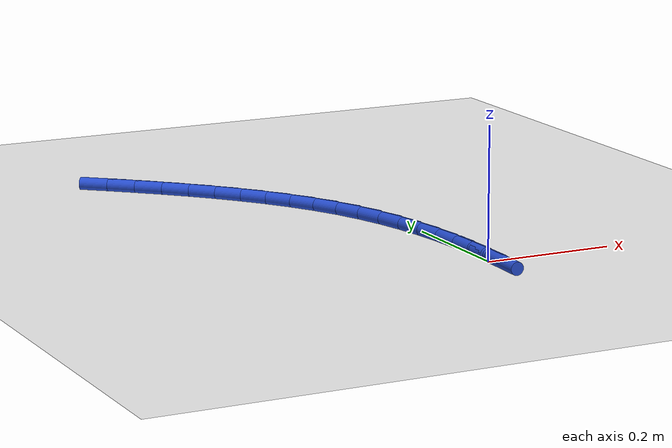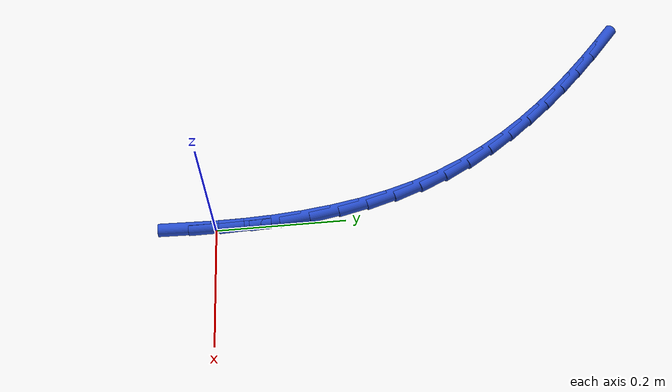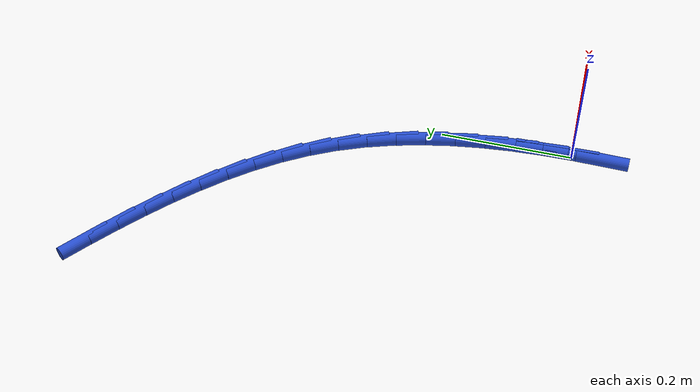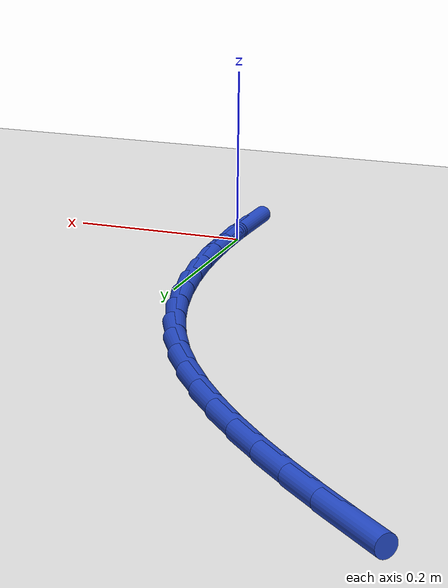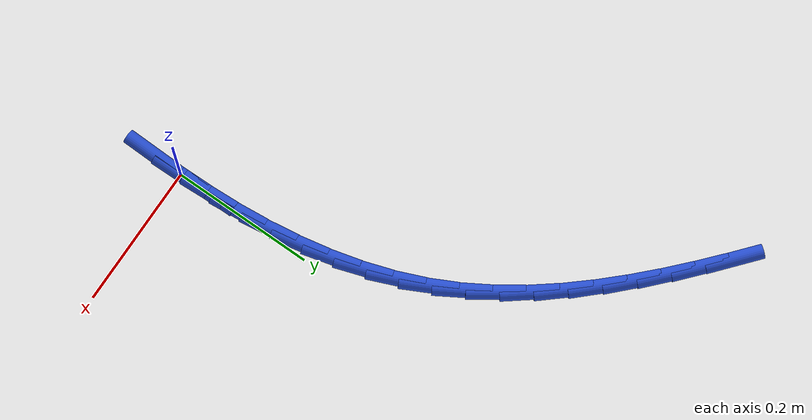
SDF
<sdf version="1.6">
 <world name="default">
  <model name="ground_plane">
   <static>1</static>
   <link name="link">
    <collision name="collision">
     <geometry><plane><normal>0 0 1</normal><size>100 100</size></plane></geometry>
     <surface><friction><ode><mu>100</mu><mu2>50</mu2></ode></friction></surface>
    </collision>
    <visual name="visual">
     <cast_shadows>0</cast_shadows>
     <geometry><plane><normal>0 0 1</normal><size>100 100</size></plane></geometry>
     <material>
      <script><uri>file://media/materials/scripts/gazebo.material</uri><name>Gazebo/WhiteGlow</name></script>
     </material>
    </visual>
   </link>
  </model>
  <model name="line">
   <link name="link_0">
    <pose>-2.2551405187698492e-17 1.5265566588595902e-16 0.01 0 1.57 -1.5581110182866578</pose>
    <collision name="collision">
     <geometry><cylinder><radius>0.01</radius><length>0.08</length></cylinder></geometry>
    </collision>
    <visual name="visual">
     <material>
      <script><name>Gazebo/Blue</name><uri>file://media/materials/scripts/gazebo.material</uri></script>
     </material>
     <geometry><cylinder><radius>0.01</radius><length>0.08</length></cylinder></geometry>
    </visual>
   </link>
   <link name="link_1">
    <pose>-0.0005864934314034655 0.04623158922415922 0.01 0 1.57 -1.5196813050333393</pose>
    <collision name="collision">
     <geometry><cylinder><radius>0.01</radius><length>0.08</length></cylinder></geometry>
    </collision>
    <visual name="visual">
     <material>
      <script><name>Gazebo/Blue</name><uri>file://media/materials/scripts/gazebo.material</uri></script>
     </material>
     <geometry><cylinder><radius>0.01</radius><length>0.08</length></cylinder></geometry>
    </visual>
   </link>
   <link name="link_2">
    <pose>-0.002946953853219973 0.09237075187400023 0.01 0 1.57 -1.4768216190914107</pose>
    <collision name="collision">
     <geometry><cylinder><radius>0.01</radius><length>0.08</length></cylinder></geometry>
    </collision>
    <visual name="visual">
     <material>
      <script><name>Gazebo/Blue</name><uri>file://media/materials/scripts/gazebo.material</uri></script>
     </material>
     <geometry><cylinder><radius>0.01</radius><length>0.08</length></cylinder></geometry>
    </visual>
   </link>
   <link name="link_3">
    <pose>-0.007266713185651544 0.13820261088529684 0.01 0 1.57 -1.4290814146857238</pose>
    <collision name="collision">
     <geometry><cylinder><radius>0.01</radius><length>0.08</length></cylinder></geometry>
    </collision>
    <visual name="visual">
     <material>
      <script><name>Gazebo/Blue</name><uri>file://media/materials/scripts/gazebo.material</uri></script>
     </material>
     <geometry><cylinder><radius>0.01</radius><length>0.08</length></cylinder></geometry>
    </visual>
   </link>
   <link name="link_4">
    <pose>-0.01373110334890018 0.18351228919382262 0.01 0 1.57 -1.3759944871478906</pose>
    <collision name="collision">
     <geometry><cylinder><radius>0.01</radius><length>0.08</length></cylinder></geometry>
    </collision>
    <visual name="visual">
     <material>
      <script><name>Gazebo/Blue</name><uri>file://media/materials/scripts/gazebo.material</uri></script>
     </material>
     <geometry><cylinder><radius>0.01</radius><length>0.08</length></cylinder></geometry>
    </visual>
   </link>
   <link name="link_5">
    <pose>-0.02252545626316788 0.2280849097353512 0.01 0 1.57 -1.3171097519300026</pose>
    <collision name="collision">
     <geometry><cylinder><radius>0.01</radius><length>0.08</length></cylinder></geometry>
    </collision>
    <visual name="visual">
     <material>
      <script><name>Gazebo/Blue</name><uri>file://media/materials/scripts/gazebo.material</uri></script>
     </material>
     <geometry><cylinder><radius>0.01</radius><length>0.08</length></cylinder></geometry>
    </visual>
   </link>
   <link name="link_6">
    <pose>-0.03383510384865665 0.27170559544565603 0.01 0 1.57 -1.2520382343686818</pose>
    <collision name="collision">
     <geometry><cylinder><radius>0.01</radius><length>0.08</length></cylinder></geometry>
    </collision>
    <visual name="visual">
     <material>
      <script><name>Gazebo/Blue</name><uri>file://media/materials/scripts/gazebo.material</uri></script>
     </material>
     <geometry><cylinder><radius>0.01</radius><length>0.08</length></cylinder></geometry>
    </visual>
   </link>
   <link name="link_7">
    <pose>-0.047845378025568486 0.3141594692605107 0.01 0 1.57 -1.1805191520707605</pose>
    <collision name="collision">
     <geometry><cylinder><radius>0.01</radius><length>0.08</length></cylinder></geometry>
    </collision>
    <visual name="visual">
     <material>
      <script><name>Gazebo/Blue</name><uri>file://media/materials/scripts/gazebo.material</uri></script>
     </material>
     <geometry><cylinder><radius>0.01</radius><length>0.08</length></cylinder></geometry>
    </visual>
   </link>
   <link name="link_8">
    <pose>-0.06474161071410542 0.355231654115689 0.01 0 1.57 -1.103817215434472</pose>
    <collision name="collision">
     <geometry><cylinder><radius>0.01</radius><length>0.08</length></cylinder></geometry>
    </collision>
    <visual name="visual">
     <material>
      <script><name>Gazebo/Blue</name><uri>file://media/materials/scripts/gazebo.material</uri></script>
     </material>
     <geometry><cylinder><radius>0.01</radius><length>0.08</length></cylinder></geometry>
    </visual>
   </link>
   <link name="link_9">
    <pose>-0.08466116027922482 0.3947411381217055 0.01 0 1.57 -1.0305617225246773</pose>
    <collision name="collision">
     <geometry><cylinder><radius>0.01</radius><length>0.08</length></cylinder></geometry>
    </collision>
    <visual name="visual">
     <material>
      <script><name>Gazebo/Blue</name><uri>file://media/materials/scripts/gazebo.material</uri></script>
     </material>
     <geometry><cylinder><radius>0.01</radius><length>0.08</length></cylinder></geometry>
    </visual>
   </link>
   <link name="link_10">
    <pose>-0.10743910433282212 0.4327202934184871 0.01 0 1.57 -0.9645054290978226</pose>
    <collision name="collision">
     <geometry><cylinder><radius>0.01</radius><length>0.08</length></cylinder></geometry>
    </collision>
    <visual name="visual">
     <material>
      <script><name>Gazebo/Blue</name><uri>file://media/materials/scripts/gazebo.material</uri></script>
     </material>
     <geometry><cylinder><radius>0.01</radius><length>0.08</length></cylinder></geometry>
    </visual>
   </link>
   <link name="link_11">
    <pose>-0.1327930913785158 0.4692843869252037 0.01 0 1.57 -0.9058867984979098</pose>
    <collision name="collision">
     <geometry><cylinder><radius>0.01</radius><length>0.08</length></cylinder></geometry>
    </collision>
    <visual name="visual">
     <material>
      <script><name>Gazebo/Blue</name><uri>file://media/materials/scripts/gazebo.material</uri></script>
     </material>
     <geometry><cylinder><radius>0.01</radius><length>0.08</length></cylinder></geometry>
    </visual>
   </link>
   <link name="link_12">
    <pose>-0.1604405091065469 0.5045488696726791 0.01 0 1.57 -0.854665689048277</pose>
    <collision name="collision">
     <geometry><cylinder><radius>0.01</radius><length>0.08</length></cylinder></geometry>
    </collision>
    <visual name="visual">
     <material>
      <script><name>Gazebo/Blue</name><uri>file://media/materials/scripts/gazebo.material</uri></script>
     </material>
     <geometry><cylinder><radius>0.01</radius><length>0.08</length></cylinder></geometry>
    </visual>
   </link>
   <link name="link_13">
    <pose>-0.19009874520715628 0.538629192691737 0.01 0 1.57 -0.8106291621072089</pose>
    <collision name="collision">
     <geometry><cylinder><radius>0.01</radius><length>0.08</length></cylinder></geometry>
    </collision>
    <visual name="visual">
     <material>
      <script><name>Gazebo/Blue</name><uri>file://media/materials/scripts/gazebo.material</uri></script>
     </material>
     <geometry><cylinder><radius>0.01</radius><length>0.08</length></cylinder></geometry>
    </visual>
   </link>
   <link name="link_14">
    <pose>-0.22148518737058487 0.5716408070132014 0.01 0 1.57 -0.7734758652950425</pose>
    <collision name="collision">
     <geometry><cylinder><radius>0.01</radius><length>0.08</length></cylinder></geometry>
    </collision>
    <visual name="visual">
     <material>
      <script><name>Gazebo/Blue</name><uri>file://media/materials/scripts/gazebo.material</uri></script>
     </material>
     <geometry><cylinder><radius>0.01</radius><length>0.08</length></cylinder></geometry>
    </visual>
   </link>
   <link name="link_15">
    <pose>-0.25431722328707346 0.603699163667896 0.01 0 1.57 -0.7428807795332064</pose>
    <collision name="collision">
     <geometry><cylinder><radius>0.01</radius><length>0.08</length></cylinder></geometry>
    </collision>
    <visual name="visual">
     <material>
      <script><name>Gazebo/Blue</name><uri>file://media/materials/scripts/gazebo.material</uri></script>
     </material>
     <geometry><cylinder><radius>0.01</radius><length>0.08</length></cylinder></geometry>
    </visual>
   </link>
   <link name="link_16">
    <pose>-0.2883122406468632 0.6349197136866445 0.01 0 1.57 -0.7185413642997761</pose>
    <collision name="collision">
     <geometry><cylinder><radius>0.01</radius><length>0.08</length></cylinder></geometry>
    </collision>
    <visual name="visual">
     <material>
      <script><name>Gazebo/Blue</name><uri>file://media/materials/scripts/gazebo.material</uri></script>
     </material>
     <geometry><cylinder><radius>0.01</radius><length>0.08</length></cylinder></geometry>
    </visual>
   </link>
   <link name="link_17">
    <pose>-0.323187627140195 0.6654179081002709 0.01 0 1.57 -0.7002089588902889</pose>
    <collision name="collision">
     <geometry><cylinder><radius>0.01</radius><length>0.08</length></cylinder></geometry>
    </collision>
    <visual name="visual">
     <material>
      <script><name>Gazebo/Blue</name><uri>file://media/materials/scripts/gazebo.material</uri></script>
     </material>
     <geometry><cylinder><radius>0.01</radius><length>0.08</length></cylinder></geometry>
    </visual>
   </link>
   <link name="link_169">
    <pose>-0.0010567304294229456 -0.04612416417915052 0.01 0 1.57 1.5478897741010864</pose>
    <collision name="collision">
     <geometry><cylinder><radius>0.01</radius><length>0.08</length></cylinder></geometry>
    </collision>
    <visual name="visual">
     <material>
      <script><name>Gazebo/Blue</name><uri>file://media/materials/scripts/gazebo.material</uri></script>
     </material>
     <geometry><cylinder><radius>0.01</radius><length>0.08</length></cylinder></geometry>
    </visual>
   </link>
   <link name="link_170">
    <pose>-2.2551405187698492e-17 2.498001805406602e-16 0.01 0 1.57 -1.5592953511606986</pose>
    <collision name="collision">
     <geometry><cylinder><radius>0.01</radius><length>0.08</length></cylinder></geometry>
    </collision>
    <visual name="visual">
     <material>
      <script><name>Gazebo/Blue</name><uri>file://media/materials/scripts/gazebo.material</uri></script>
     </material>
     <geometry><cylinder><radius>0.01</radius><length>0.08</length></cylinder></geometry>
    </visual>
   </link>
   <link name="link_171">
    <pose>-0.0005319046407881497 0.04624661466905944 0.01 0 1.57 -1.5592953511606986</pose>
    <collision name="collision">
     <geometry><cylinder><radius>0.01</radius><length>0.08</length></cylinder></geometry>
    </collision>
    <visual name="visual">
     <material>
      <script><name>Gazebo/Blue</name><uri>file://media/materials/scripts/gazebo.material</uri></script>
     </material>
     <geometry><cylinder><radius>0.01</radius><length>0.08</length></cylinder></geometry>
    </visual>
   </link>
  </model>
 </world>
</sdf>
